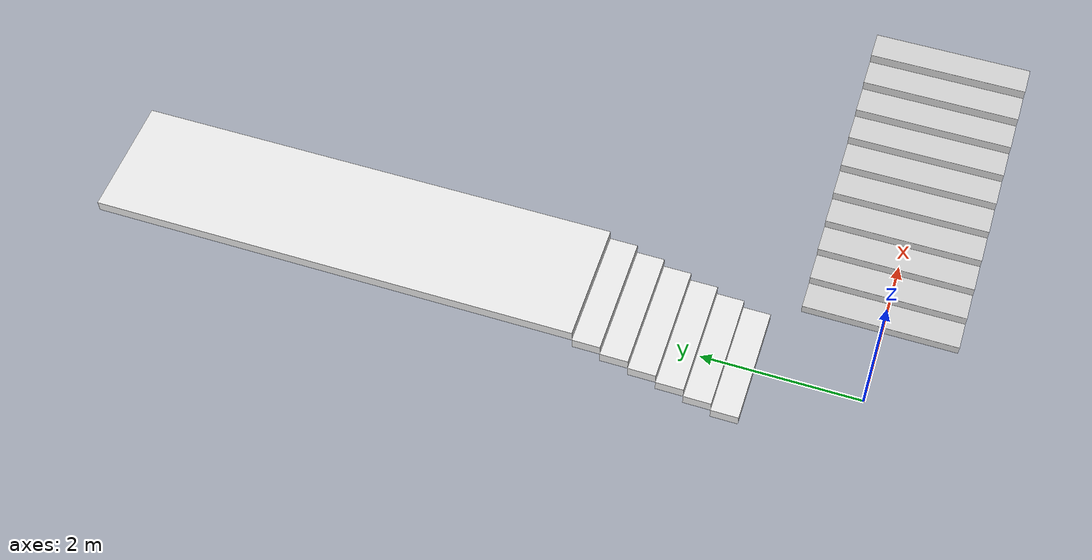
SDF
<?xml version="1.0" ?>
<sdf version="1.7">
  <world name="staircase_world">

    <gravity>0 0 -9.81</gravity>
    <physics type="ode">
      <max_step_size>0.001</max_step_size>
      <real_time_factor>1</real_time_factor>
    </physics>

    <model name="ground_plane">
      <static>true</static>
      <link name="link">
        <collision name="collision">
          <geometry>
            <plane>
              <normal>0 0 1</normal>
              <size>50 50</size>
            </plane>
          </geometry>
          <surface>
            <friction>
              <ode>
                <mu>1.0</mu>
                <mu2>1.0</mu2>
              </ode>
            </friction>
          </surface>
        </collision>
      </link>
    </model>

    <light name="sun" type="directional">
      <cast_shadows>true</cast_shadows>
      <pose>0 0 10 0 0 0</pose>
      <diffuse>0.7 0.6 0.5 1</diffuse> <!-- Softer warm light -->
      <specular>0.05 0.05 0.05 1</specular>

      <attenuation>
        <range>50</range>
        <constant>0.5</constant>
        <linear>0.01</linear>
        <quadratic>0.002</quadratic>
      </attenuation>

      <direction>1 0 -0.5</direction> <!-- From back, slight top angle -->
    </light>

    <model name="staircase">
      <static>true</static>
      <pose>1 1 0 0 0 -1.5708</pose>

      <link name="staircase_link">

        <visual name="staircase_visual">
          <geometry>
            <mesh>
              <uri>model://amr_description/meshes/stairs_mesh.stl</uri>
              <scale>0.001 0.001 0.001</scale>
            </mesh>
          </geometry>
          <material>
            <ambient>0.5 0.5 0.5 1</ambient>
            <diffuse>0.8 0.8 0.8 1</diffuse>
            <specular>0.1 0.1 0.1 1</specular>
            <emissive>0.05 0.05 0.05 1</emissive>
          </material>
         </visual>

         <collision name="staircase_collision">
           <geometry>
             <mesh>
               <uri>model://amr_description/meshes/stairs_mesh.stl</uri>
               <scale>0.001 0.001 0.001</scale>
             </mesh>
           </geometry>
           <surface>
            <friction>
               <ode>
                <mu>1000000.0</mu>
                <mu2>1000000.0</mu2>
              </ode>
            </friction>
          </surface>
        </collision>
      </link>
    </model>

    <model name="staircase_without_protrusion">

      <pose>0 1.5 0 0 0 0</pose>
      <static>true</static>

      <link name="step1">
        <pose>0 0 0.07 0 0 0</pose>
        <visual name="visual">
          <geometry>
            <box>
              <size>1.5 0.34 0.14</size>
            </box>
          </geometry>
          <material>
            <ambient>0.8 0.8 0.8 1</ambient>
            <diffuse>0.9 0.9 0.9 1</diffuse>
          </material>
        </visual>
        <collision name="collision">
          <geometry>
            <box>
              <size>1.5 0.34 0.14</size>
            </box>
          </geometry>
          <surface>
            <friction>
              <ode>
                <mu>1000000000.0</mu>
                <mu2>1000000000.0</mu2>
              </ode>
            </friction>
          </surface>
        </collision>
      </link>

      <link name="step2">
        <pose>0 0.34 0.21 0 0 0</pose>
        <visual name="visual">
          <geometry>
            <box>
              <size>1.5 0.34 0.14</size>
            </box>
          </geometry>
          <material>
            <ambient>0.8 0.8 0.8 1</ambient>
            <diffuse>0.9 0.9 0.9 1</diffuse>
          </material>
        </visual>
        <collision name="collision">
          <geometry>
            <box>
              <size>1.5 0.34 0.14</size>
            </box>
          </geometry>
          <surface>
            <friction>
              <ode>
                <mu>1000000000.0</mu>
                <mu2>1000000000.0</mu2>
              </ode>
            </friction>
          </surface>
        </collision>
      </link>

      <link name="step3">
        <pose>0 0.68 0.35 0 0 0</pose>
        <visual name="visual">
          <geometry>
            <box>
              <size>1.5 0.34 0.14</size>
            </box>
          </geometry>
          <material>
            <ambient>0.8 0.8 0.8 1</ambient>
            <diffuse>0.9 0.9 0.9 1</diffuse>
          </material>
        </visual>
        <collision name="collision">
          <geometry>
            <box>
              <size>1.5 0.34 0.14</size>
            </box>
          </geometry>
          <surface>
            <friction>
              <ode>
                <mu>1000000000.0</mu>
                <mu2>1000000000.0</mu2>
              </ode>
            </friction>
          </surface>
        </collision>
      </link>

      <link name="step4">
        <pose>0 1.02 0.49 0 0 0</pose>
        <visual name="visual">
          <geometry>
            <box>
              <size>1.5 0.34 0.14</size>
            </box>
          </geometry>
          <material>
            <ambient>0.8 0.8 0.8 1</ambient>
            <diffuse>0.9 0.9 0.9 1</diffuse>
          </material>
        </visual>
        <collision name="collision">
          <geometry>
            <box>
              <size>1.5 0.34 0.14</size>
            </box>
          </geometry>
          <surface>
            <friction>
              <ode>
                <mu>1000000000.0</mu>
                <mu2>1000000000.0</mu2>
              </ode>
            </friction>
          </surface>
        </collision>
      </link>

      <link name="step5">
        <pose>0 1.36 0.63 0 0 0</pose>
        <visual name="visual">
          <geometry>
            <box>
              <size>1.5 0.34 0.14</size>
            </box>
          </geometry>
          <material>
            <ambient>0.8 0.8 0.8 1</ambient>
            <diffuse>0.9 0.9 0.9 1</diffuse>
          </material>
        </visual>
        <collision name="collision">
          <geometry>
            <box>
              <size>1.5 0.34 0.14</size>
            </box>
          </geometry>
          <surface>
            <friction>
              <ode>
                <mu>1000000000.0</mu>
                <mu2>1000000000.0</mu2>
              </ode>
            </friction>
          </surface>
        </collision>
      </link>

      <link name="step6">
        <pose>0 1.70 0.77 0 0 0</pose>
        <visual name="visual">
          <geometry>
            <box>
              <size>1.5 0.34 0.14</size>
            </box>
          </geometry>
          <material>
            <ambient>0.8 0.8 0.8 1</ambient>
            <diffuse>0.9 0.9 0.9 1</diffuse>
          </material>
        </visual>
        <collision name="collision">
          <geometry>
            <box>
              <size>1.5 0.34 0.14</size>
            </box>
          </geometry>
          <surface>
            <friction>
              <ode>
                <mu>1000000000.0</mu>
                <mu2>1000000000.0</mu2>
              </ode>
            </friction>
          </surface>
        </collision>
      </link>

      <link name="step7">
        <pose>0 4.87 0.91 0 0 0</pose>
        <visual name="visual">
          <geometry>
            <box>
              <size>1.5 6 0.14</size>
            </box>
          </geometry>
          <material>
            <ambient>0.8 0.8 0.8 1</ambient>
            <diffuse>0.9 0.9 0.9 1</diffuse>
          </material>
        </visual>
        <collision name="collision">
          <geometry>
            <box>
              <size>1.5 6 0.14</size>
            </box>
          </geometry>
          <surface>
            <friction>
              <ode>
                <mu>1000000000.0</mu>
                <mu2>1000000000.0</mu2>
              </ode>
            </friction>
          </surface>
        </collision>
      </link>
    </model>

  </world>
</sdf>
